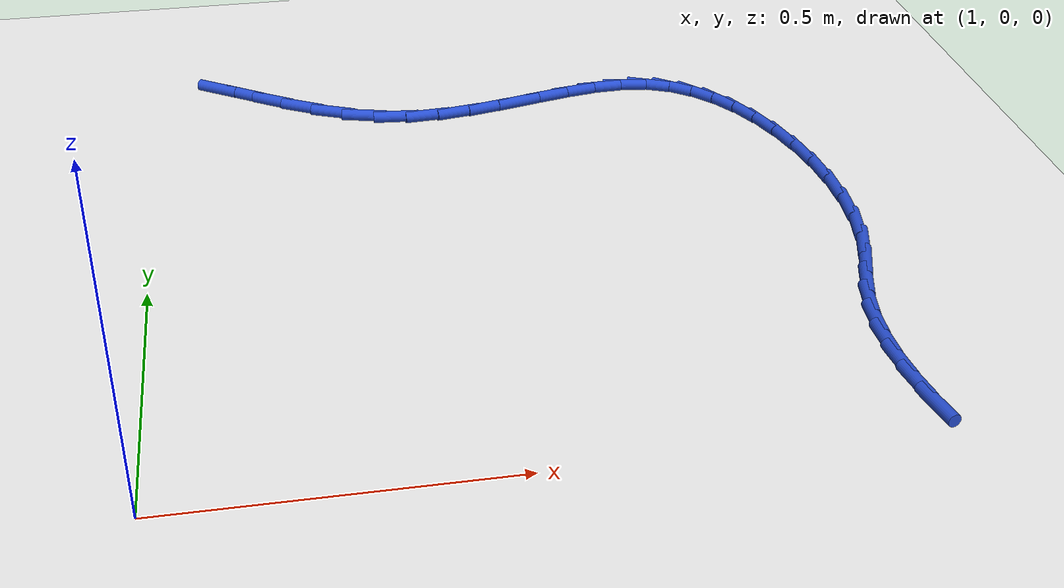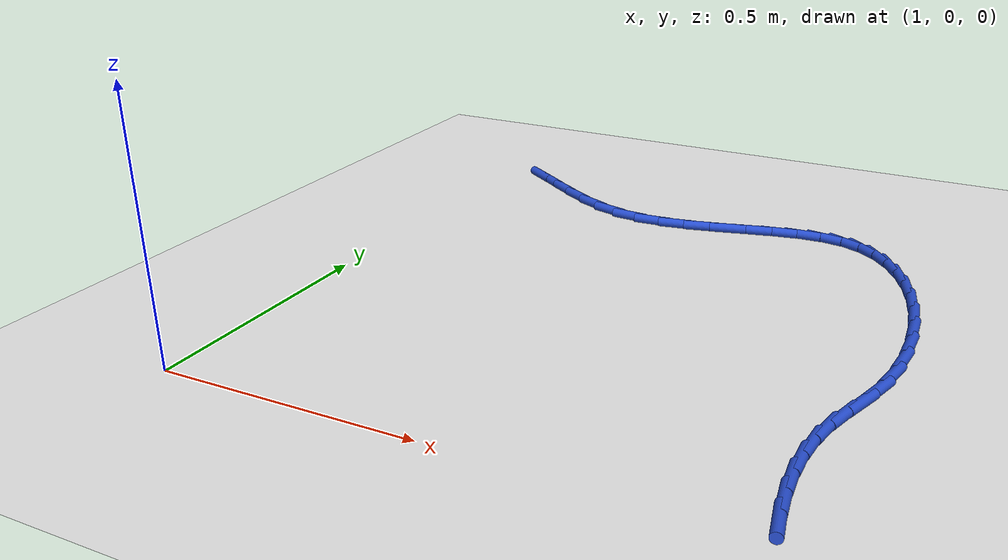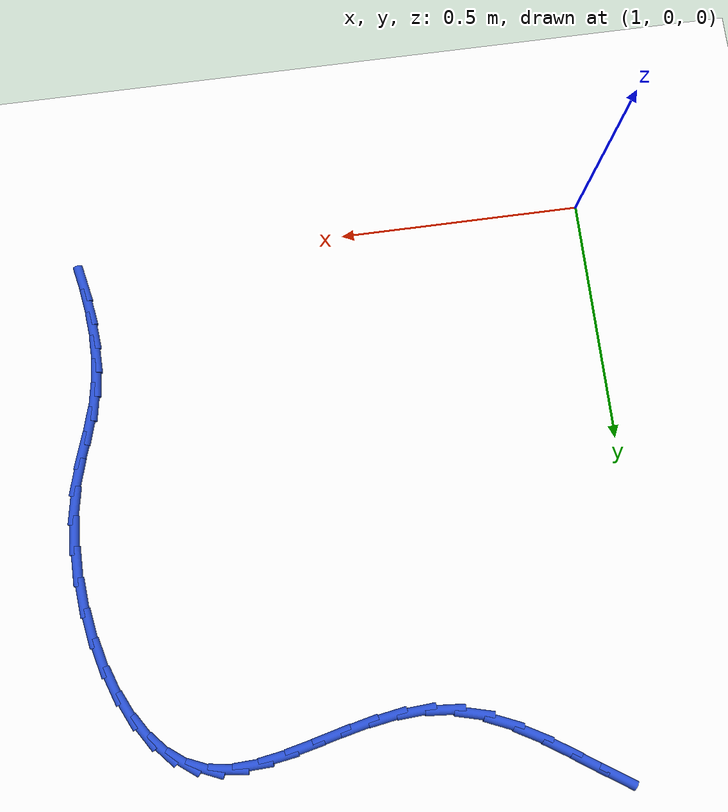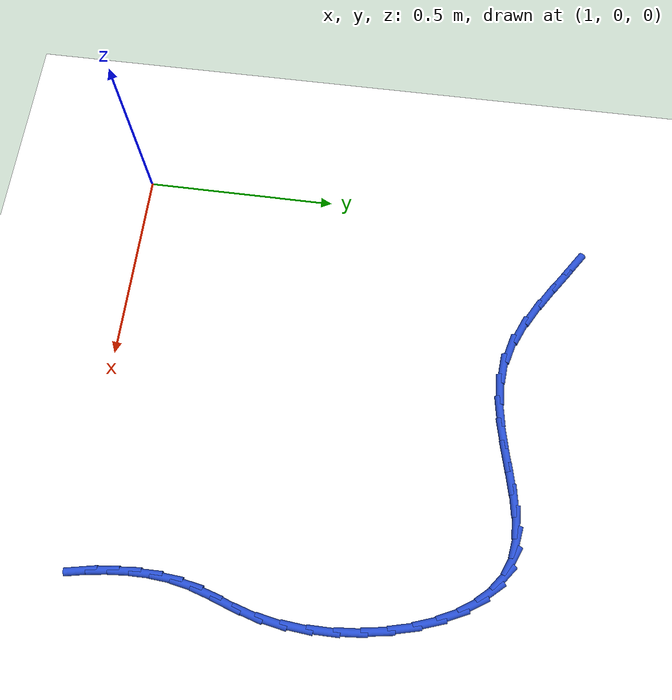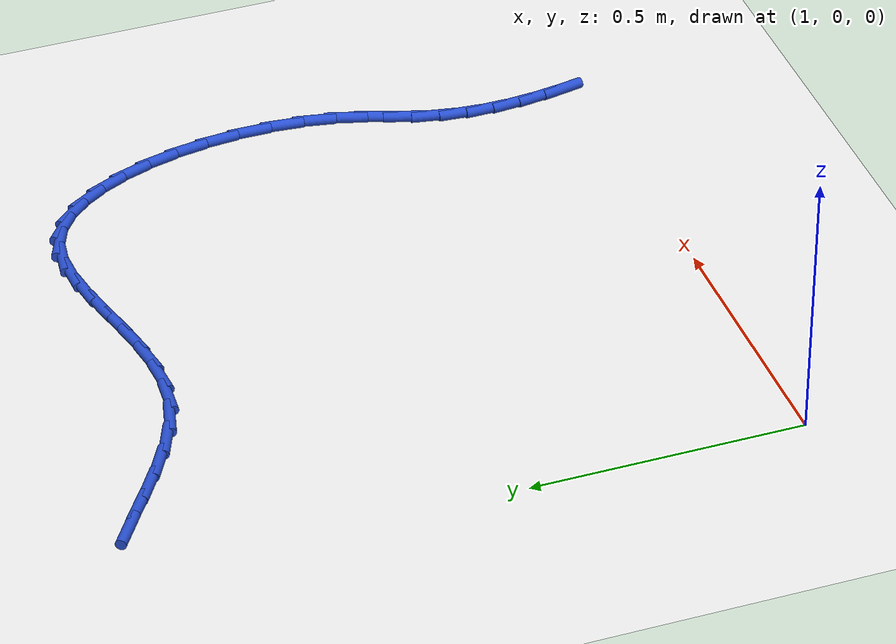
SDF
<sdf version="1.6">
 <world name="default">
  <model name="ground_plane">
   <static>1</static>
   <link name="link">
    <collision name="collision">
     <geometry><plane><normal>0 0 1</normal><size>100 100</size></plane></geometry>
     <surface><friction><ode><mu>100</mu><mu2>50</mu2></ode></friction></surface>
    </collision>
    <visual name="visual">
     <cast_shadows>0</cast_shadows>
     <geometry><plane><normal>0 0 1</normal><size>100 100</size></plane></geometry>
     <material>
      <script><uri>file://media/materials/scripts/gazebo.material</uri><name>Gazebo/WhiteGlow</name></script>
     </material>
    </visual>
   </link>
  </model>
  <model name="line">
   <link name="link_34">
    <pose>1.1118241971058818 1.1631112908857915 0.01 0 1.57 -0.5900796372655672</pose>
    <collision name="collision">
     <geometry><cylinder><radius>0.01</radius><length>0.08</length></cylinder></geometry>
    </collision>
    <visual name="visual">
     <material>
      <script><name>Gazebo/Blue</name><uri>file://media/materials/scripts/gazebo.material</uri></script>
     </material>
     <geometry><cylinder><radius>0.01</radius><length>0.08</length></cylinder></geometry>
    </visual>
   </link>
   <link name="link_35">
    <pose>1.1600015138593243 1.130848339438685 0.01 0 1.57 -0.6000657120836914</pose>
    <collision name="collision">
     <geometry><cylinder><radius>0.01</radius><length>0.08</length></cylinder></geometry>
    </collision>
    <visual name="visual">
     <material>
      <script><name>Gazebo/Blue</name><uri>file://media/materials/scripts/gazebo.material</uri></script>
     </material>
     <geometry><cylinder><radius>0.01</radius><length>0.08</length></cylinder></geometry>
    </visual>
   </link>
   <link name="link_36">
    <pose>1.2099872739785975 1.0966464187962601 0.01 0 1.57 -0.5741820575036555</pose>
    <collision name="collision">
     <geometry><cylinder><radius>0.01</radius><length>0.08</length></cylinder></geometry>
    </collision>
    <visual name="visual">
     <material>
      <script><name>Gazebo/Blue</name><uri>file://media/materials/scripts/gazebo.material</uri></script>
     </material>
     <geometry><cylinder><radius>0.01</radius><length>0.08</length></cylinder></geometry>
    </visual>
   </link>
   <link name="link_37">
    <pose>1.2616235115617924 1.0632437287208305 0.01 0 1.57 -0.5121082902583999</pose>
    <collision name="collision">
     <geometry><cylinder><radius>0.01</radius><length>0.08</length></cylinder></geometry>
    </collision>
    <visual name="visual">
     <material>
      <script><name>Gazebo/Blue</name><uri>file://media/materials/scripts/gazebo.material</uri></script>
     </material>
     <geometry><cylinder><radius>0.01</radius><length>0.08</length></cylinder></geometry>
    </visual>
   </link>
   <link name="link_38">
    <pose>1.3147522607069984 1.0333784689747114 0.01 0 1.57 -0.408735743502697</pose>
    <collision name="collision">
     <geometry><cylinder><radius>0.01</radius><length>0.08</length></cylinder></geometry>
    </collision>
    <visual name="visual">
     <material>
      <script><name>Gazebo/Blue</name><uri>file://media/materials/scripts/gazebo.material</uri></script>
     </material>
     <geometry><cylinder><radius>0.01</radius><length>0.08</length></cylinder></geometry>
    </visual>
   </link>
   <link name="link_39">
    <pose>1.3692155555123058 1.0097888393202168 0.01 0 1.57 -0.25638457633578776</pose>
    <collision name="collision">
     <geometry><cylinder><radius>0.01</radius><length>0.08</length></cylinder></geometry>
    </collision>
    <visual name="visual">
     <material>
      <script><name>Gazebo/Blue</name><uri>file://media/materials/scripts/gazebo.material</uri></script>
     </material>
     <geometry><cylinder><radius>0.01</radius><length>0.08</length></cylinder></geometry>
    </visual>
   </link>
   <link name="link_40">
    <pose>1.4248546900250234 0.9952028195085528 0.01 0 1.57 -0.07777250917921845</pose>
    <collision name="collision">
     <geometry><cylinder><radius>0.01</radius><length>0.08</length></cylinder></geometry>
    </collision>
    <visual name="visual">
     <material>
      <script><name>Gazebo/Blue</name><uri>file://media/materials/scripts/gazebo.material</uri></script>
     </material>
     <geometry><cylinder><radius>0.01</radius><length>0.08</length></cylinder></geometry>
    </visual>
   </link>
   <link name="link_41">
    <pose>1.4813985737160171 0.9907963719852275 0.01 0 1.57 0.06572686670619221</pose>
    <collision name="collision">
     <geometry><cylinder><radius>0.01</radius><length>0.08</length></cylinder></geometry>
    </collision>
    <visual name="visual">
     <material>
      <script><name>Gazebo/Blue</name><uri>file://media/materials/scripts/gazebo.material</uri></script>
     </material>
     <geometry><cylinder><radius>0.01</radius><length>0.08</length></cylinder></geometry>
    </visual>
   </link>
   <link name="link_42">
    <pose>1.538344338381511 0.9945446377529665 0.01 0 1.57 0.1653808120447469</pose>
    <collision name="collision">
     <geometry><cylinder><radius>0.01</radius><length>0.08</length></cylinder></geometry>
    </collision>
    <visual name="visual">
     <material>
      <script><name>Gazebo/Blue</name><uri>file://media/materials/scripts/gazebo.material</uri></script>
     </material>
     <geometry><cylinder><radius>0.01</radius><length>0.08</length></cylinder></geometry>
    </visual>
   </link>
   <link name="link_43">
    <pose>1.5951604983177008 1.0040275536263747 0.01 0 1.57 0.2240689625554522</pose>
    <collision name="collision">
     <geometry><cylinder><radius>0.01</radius><length>0.08</length></cylinder></geometry>
    </collision>
    <visual name="visual">
     <material>
      <script><name>Gazebo/Blue</name><uri>file://media/materials/scripts/gazebo.material</uri></script>
     </material>
     <geometry><cylinder><radius>0.01</radius><length>0.08</length></cylinder></geometry>
    </visual>
   </link>
   <link name="link_44">
    <pose>1.6513155678207823 1.0168250564200558 0.01 0 1.57 0.24414631944973658</pose>
    <collision name="collision">
     <geometry><cylinder><radius>0.01</radius><length>0.08</length></cylinder></geometry>
    </collision>
    <visual name="visual">
     <material>
      <script><name>Gazebo/Blue</name><uri>file://media/materials/scripts/gazebo.material</uri></script>
     </material>
     <geometry><cylinder><radius>0.01</radius><length>0.08</length></cylinder></geometry>
    </visual>
   </link>
   <link name="link_45">
    <pose>1.7062780611869508 1.0305170829486159 0.01 0 1.57 0.22467015988949632</pose>
    <collision name="collision">
     <geometry><cylinder><radius>0.01</radius><length>0.08</length></cylinder></geometry>
    </collision>
    <visual name="visual">
     <material>
      <script><name>Gazebo/Blue</name><uri>file://media/materials/scripts/gazebo.material</uri></script>
     </material>
     <geometry><cylinder><radius>0.01</radius><length>0.08</length></cylinder></geometry>
    </visual>
   </link>
   <link name="link_46">
    <pose>1.7595164927124025 1.042683570026659 0.01 0 1.57 0.15987180391792022</pose>
    <collision name="collision">
     <geometry><cylinder><radius>0.01</radius><length>0.08</length></cylinder></geometry>
    </collision>
    <visual name="visual">
     <material>
      <script><name>Gazebo/Blue</name><uri>file://media/materials/scripts/gazebo.material</uri></script>
     </material>
     <geometry><cylinder><radius>0.01</radius><length>0.08</length></cylinder></geometry>
    </visual>
   </link>
   <link name="link_47">
    <pose>1.8104993766933322 1.0509044544687896 0.01 0 1.57 0.038474331121059906</pose>
    <collision name="collision">
     <geometry><cylinder><radius>0.01</radius><length>0.08</length></cylinder></geometry>
    </collision>
    <visual name="visual">
     <material>
      <script><name>Gazebo/Blue</name><uri>file://media/materials/scripts/gazebo.material</uri></script>
     </material>
     <geometry><cylinder><radius>0.01</radius><length>0.08</length></cylinder></geometry>
    </visual>
   </link>
   <link name="link_48">
    <pose>1.8586952274259363 1.0527596730896125 0.01 0 1.57 -0.1532218894098518</pose>
    <collision name="collision">
     <geometry><cylinder><radius>0.01</radius><length>0.08</length></cylinder></geometry>
    </collision>
    <visual name="visual">
     <material>
      <script><name>Gazebo/Blue</name><uri>file://media/materials/scripts/gazebo.material</uri></script>
     </material>
     <geometry><cylinder><radius>0.01</radius><length>0.08</length></cylinder></geometry>
    </visual>
   </link>
   <link name="link_49">
    <pose>1.9035725592064092 1.0458291627037324 0.01 0 1.57 -0.4091834556531191</pose>
    <collision name="collision">
     <geometry><cylinder><radius>0.01</radius><length>0.08</length></cylinder></geometry>
    </collision>
    <visual name="visual">
     <material>
      <script><name>Gazebo/Blue</name><uri>file://media/materials/scripts/gazebo.material</uri></script>
     </material>
     <geometry><cylinder><radius>0.01</radius><length>0.08</length></cylinder></geometry>
    </visual>
   </link>
   <link name="link_50">
    <pose>1.9446341344281903 1.0280223689619927 0.01 0 1.57 -0.653995918955852</pose>
    <collision name="collision">
     <geometry><cylinder><radius>0.01</radius><length>0.08</length></cylinder></geometry>
    </collision>
    <visual name="visual">
     <material>
      <script><name>Gazebo/Blue</name><uri>file://media/materials/scripts/gazebo.material</uri></script>
     </material>
     <geometry><cylinder><radius>0.01</radius><length>0.08</length></cylinder></geometry>
    </visual>
   </link>
   <link name="link_51">
    <pose>1.981633470615388 0.9996613104154259 0.01 0 1.57 -0.8523984370859096</pose>
    <collision name="collision">
     <geometry><cylinder><radius>0.01</radius><length>0.08</length></cylinder></geometry>
    </collision>
    <visual name="visual">
     <material>
      <script><name>Gazebo/Blue</name><uri>file://media/materials/scripts/gazebo.material</uri></script>
     </material>
     <geometry><cylinder><radius>0.01</radius><length>0.08</length></cylinder></geometry>
    </visual>
   </link>
   <link name="link_52">
    <pose>2.014435557715865 0.9621405074934283 0.01 0 1.57 -1.0095079521292303</pose>
    <collision name="collision">
     <geometry><cylinder><radius>0.01</radius><length>0.08</length></cylinder></geometry>
    </collision>
    <visual name="visual">
     <material>
      <script><name>Gazebo/Blue</name><uri>file://media/materials/scripts/gazebo.material</uri></script>
     </material>
     <geometry><cylinder><radius>0.01</radius><length>0.08</length></cylinder></geometry>
    </visual>
   </link>
   <link name="link_53">
    <pose>2.04290589214038 0.9168593534216699 0.01 0 1.57 -1.1356899805627934</pose>
    <collision name="collision">
     <geometry><cylinder><radius>0.01</radius><length>0.08</length></cylinder></geometry>
    </collision>
    <visual name="visual">
     <material>
      <script><name>Gazebo/Blue</name><uri>file://media/materials/scripts/gazebo.material</uri></script>
     </material>
     <geometry><cylinder><radius>0.01</radius><length>0.08</length></cylinder></geometry>
    </visual>
   </link>
   <link name="link_54">
    <pose>2.066909970299694 0.8652172414258206 0.01 0 1.57 -1.2405567775127413</pose>
    <collision name="collision">
     <geometry><cylinder><radius>0.01</radius><length>0.08</length></cylinder></geometry>
    </collision>
    <visual name="visual">
     <material>
      <script><name>Gazebo/Blue</name><uri>file://media/materials/scripts/gazebo.material</uri></script>
     </material>
     <geometry><cylinder><radius>0.01</radius><length>0.08</length></cylinder></geometry>
    </visual>
   </link>
   <link name="link_55">
    <pose>2.0863132886045648 0.8086135647315492 0.01 0 1.57 -1.3316673609923124</pose>
    <collision name="collision">
     <geometry><cylinder><radius>0.01</radius><length>0.08</length></cylinder></geometry>
    </collision>
    <visual name="visual">
     <material>
      <script><name>Gazebo/Blue</name><uri>file://media/materials/scripts/gazebo.material</uri></script>
     </material>
     <geometry><cylinder><radius>0.01</radius><length>0.08</length></cylinder></geometry>
    </visual>
   </link>
   <link name="link_56">
    <pose>2.100981343465755 0.7484477165645266 0.01 0 1.57 -1.4148687941108253</pose>
    <collision name="collision">
     <geometry><cylinder><radius>0.01</radius><length>0.08</length></cylinder></geometry>
    </collision>
    <visual name="visual">
     <material>
      <script><name>Gazebo/Blue</name><uri>file://media/materials/scripts/gazebo.material</uri></script>
     </material>
     <geometry><cylinder><radius>0.01</radius><length>0.08</length></cylinder></geometry>
    </visual>
   </link>
   <link name="link_57">
    <pose>2.1107796312940224 0.6861190901504215 0.01 0 1.57 -1.4949575224449192</pose>
    <collision name="collision">
     <geometry><cylinder><radius>0.01</radius><length>0.08</length></cylinder></geometry>
    </collision>
    <visual name="visual">
     <material>
      <script><name>Gazebo/Blue</name><uri>file://media/materials/scripts/gazebo.material</uri></script>
     </material>
     <geometry><cylinder><radius>0.01</radius><length>0.08</length></cylinder></geometry>
    </visual>
   </link>
   <link name="link_58">
    <pose>2.115573648500128 0.6230270787149047 0.01 0 1.57 1.565276384981466</pose>
    <collision name="collision">
     <geometry><cylinder><radius>0.01</radius><length>0.08</length></cylinder></geometry>
    </collision>
    <visual name="visual">
     <material>
      <script><name>Gazebo/Blue</name><uri>file://media/materials/scripts/gazebo.material</uri></script>
     </material>
     <geometry><cylinder><radius>0.01</radius><length>0.08</length></cylinder></geometry>
    </visual>
   </link>
   <link name="link_59">
    <pose>2.115228891494831 0.5605710754836447 0.01 0 1.57 1.4780808034710937</pose>
    <collision name="collision">
     <geometry><cylinder><radius>0.01</radius><length>0.08</length></cylinder></geometry>
    </collision>
    <visual name="visual">
     <material>
      <script><name>Gazebo/Blue</name><uri>file://media/materials/scripts/gazebo.material</uri></script>
     </material>
     <geometry><cylinder><radius>0.01</radius><length>0.08</length></cylinder></geometry>
    </visual>
   </link>
   <link name="link_60">
    <pose>2.1096108566888923 0.5001504736823129 0.01 0 1.57 1.379675724442057</pose>
    <collision name="collision">
     <geometry><cylinder><radius>0.01</radius><length>0.08</length></cylinder></geometry>
    </collision>
    <visual name="visual">
     <material>
      <script><name>Gazebo/Blue</name><uri>file://media/materials/scripts/gazebo.material</uri></script>
     </material>
     <geometry><cylinder><radius>0.01</radius><length>0.08</length></cylinder></geometry>
    </visual>
   </link>
   <link name="link_61">
    <pose>2.0985851101695077 0.4431646112976795 0.01 0 1.57 1.280404094229952</pose>
    <collision name="collision">
     <geometry><cylinder><radius>0.01</radius><length>0.08</length></cylinder></geometry>
    </collision>
    <visual name="visual">
     <material>
      <script><name>Gazebo/Blue</name><uri>file://media/materials/scripts/gazebo.material</uri></script>
     </material>
     <geometry><cylinder><radius>0.01</radius><length>0.08</length></cylinder></geometry>
    </visual>
   </link>
   <link name="link_62">
    <pose>2.082811816340875 0.3903828753914755 0.01 0 1.57 1.2413578714222</pose>
    <collision name="collision">
     <geometry><cylinder><radius>0.01</radius><length>0.08</length></cylinder></geometry>
    </collision>
    <visual name="visual">
     <material>
      <script><name>Gazebo/Blue</name><uri>file://media/materials/scripts/gazebo.material</uri></script>
     </material>
     <geometry><cylinder><radius>0.01</radius><length>0.08</length></cylinder></geometry>
    </visual>
   </link>
   <link name="link_63">
    <pose>2.0657166895979553 0.3403821480356148 0.01 0 1.57 1.2856585230784037</pose>
    <collision name="collision">
     <geometry><cylinder><radius>0.01</radius><length>0.08</length></cylinder></geometry>
    </collision>
    <visual name="visual">
     <material>
      <script><name>Gazebo/Blue</name><uri>file://media/materials/scripts/gazebo.material</uri></script>
     </material>
     <geometry><cylinder><radius>0.01</radius><length>0.08</length></cylinder></geometry>
    </visual>
   </link>
   <link name="link_64">
    <pose>2.0513194067636875 0.2912656584978353 0.01 0 1.57 1.3906167535318301</pose>
    <collision name="collision">
     <geometry><cylinder><radius>0.01</radius><length>0.08</length></cylinder></geometry>
    </collision>
    <visual name="visual">
     <material>
      <script><name>Gazebo/Blue</name><uri>file://media/materials/scripts/gazebo.material</uri></script>
     </material>
     <geometry><cylinder><radius>0.01</radius><length>0.08</length></cylinder></geometry>
    </visual>
   </link>
   <link name="link_65">
    <pose>2.042290206699731 0.24169689914759868 0.01 0 1.57 1.4930259900293474</pose>
    <collision name="collision">
     <geometry><cylinder><radius>0.01</radius><length>0.08</length></cylinder></geometry>
    </collision>
    <visual name="visual">
     <material>
      <script><name>Gazebo/Blue</name><uri>file://media/materials/scripts/gazebo.material</uri></script>
     </material>
     <geometry><cylinder><radius>0.01</radius><length>0.08</length></cylinder></geometry>
    </visual>
   </link>
   <link name="link_66">
    <pose>2.0383824160397963 0.1915504134283528 0.01 0 1.57 -1.5592285374577033</pose>
    <collision name="collision">
     <geometry><cylinder><radius>0.01</radius><length>0.08</length></cylinder></geometry>
    </collision>
    <visual name="visual">
     <material>
      <script><name>Gazebo/Blue</name><uri>file://media/materials/scripts/gazebo.material</uri></script>
     </material>
     <geometry><cylinder><radius>0.01</radius><length>0.08</length></cylinder></geometry>
    </visual>
   </link>
   <link name="link_67">
    <pose>2.0389688328703297 0.14085873359837492 0.01 0 1.57 -1.4840411063616188</pose>
    <collision name="collision">
     <geometry><cylinder><radius>0.01</radius><length>0.08</length></cylinder></geometry>
    </collision>
    <visual name="visual">
     <material>
      <script><name>Gazebo/Blue</name><uri>file://media/materials/scripts/gazebo.material</uri></script>
     </material>
     <geometry><cylinder><radius>0.01</radius><length>0.08</length></cylinder></geometry>
    </visual>
   </link>
   <link name="link_68">
    <pose>2.043422255277775 0.08965439191594038 0.01 0 1.57 -1.4230314044231713</pose>
    <collision name="collision">
     <geometry><cylinder><radius>0.01</radius><length>0.08</length></cylinder></geometry>
    </collision>
    <visual name="visual">
     <material>
      <script><name>Gazebo/Blue</name><uri>file://media/materials/scripts/gazebo.material</uri></script>
     </material>
     <geometry><cylinder><radius>0.01</radius><length>0.08</length></cylinder></geometry>
    </visual>
   </link>
   <link name="link_69">
    <pose>2.0511154813485772 0.03796992063932635 0.01 0 1.57 -1.375625873173111</pose>
    <collision name="collision">
     <geometry><cylinder><radius>0.01</radius><length>0.08</length></cylinder></geometry>
    </collision>
    <visual name="visual">
     <material>
      <script><name>Gazebo/Blue</name><uri>file://media/materials/scripts/gazebo.material</uri></script>
     </material>
     <geometry><cylinder><radius>0.01</radius><length>0.08</length></cylinder></geometry>
    </visual>
   </link>
  </model>
 </world>
</sdf>
